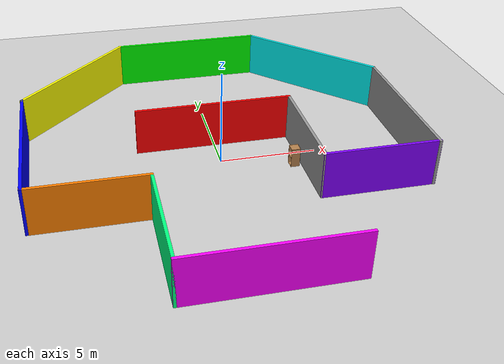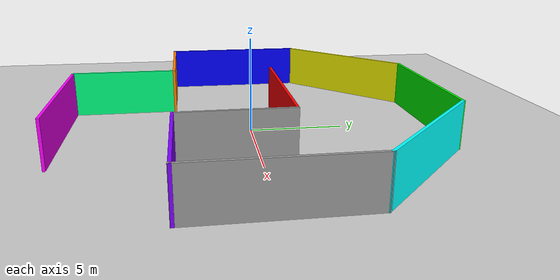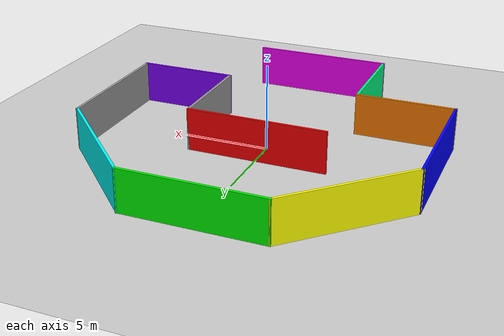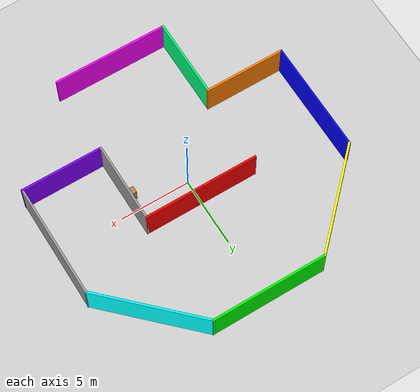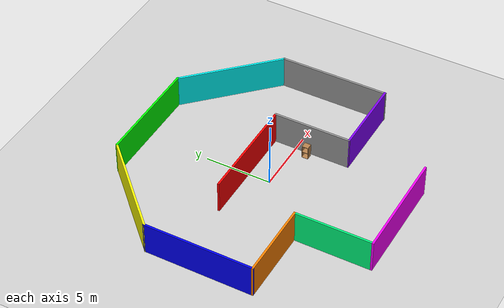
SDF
<sdf version="1.6">
 <world name="default">
  <model name="ground_plane">
   <static>1</static>
   <link name="link">
    <collision name="collision">
     <geometry><plane><normal>0 0 1</normal><size>100 100</size></plane></geometry>
     <surface><friction><ode><mu>100</mu><mu2>50</mu2></ode></friction></surface>
    </collision>
    <visual name="visual">
     <cast_shadows>0</cast_shadows>
     <geometry><plane><normal>0 0 1</normal><size>100 100</size></plane></geometry>
     <material>
      <script><uri>file://media/materials/scripts/gazebo.material</uri><name>Gazebo/Grey</name></script>
     </material>
    </visual>
   </link>
  </model>
  <model name="localize_room">
   <pose>0.00802 0.011691 0 0 -0 0</pose>
   <link name="Wall_15">
    <collision name="Wall_15_Collision">
     <geometry><box><size>8.284 0.15 2.5</size></box></geometry>
     <pose>0 0 1.25 0 -0 0</pose>
    </collision>
    <visual name="Wall_15_Visual">
     <pose>0 0 1.25 0 -0 0</pose>
     <geometry><box><size>8.284 0.15 2.5</size></box></geometry>
     <material>
      <script><uri>file://media/materials/scripts/gazebo.material</uri><name>Gazebo/Grey</name></script>
      <ambient>0 0 0 1</ambient>
     </material>
     <meta><layer>0</layer></meta>
    </visual>
    <pose>9.775 -0.015533 0 0 -0 1.5708</pose>
   </link>
   <link name="Wall_21">
    <collision name="Wall_21_Collision">
     <geometry><box><size>8.25 0.15 2.5</size></box></geometry>
     <pose>0 0 1.25 0 -0 0</pose>
    </collision>
    <visual name="Wall_21_Visual">
     <pose>0 0 1.25 0 -0 0</pose>
     <geometry><box><size>8.25 0.15 2.5</size></box></geometry>
     <material>
      <script><uri>file://media/materials/scripts/gazebo.material</uri><name>Gazebo/Grey</name></script>
      <ambient>0 0 1 1</ambient>
     </material>
     <meta><layer>0</layer></meta>
    </visual>
    <pose>-9.775 0.001467 0 0 -0 1.5708</pose>
   </link>
   <link name="Wall_27">
    <collision name="Wall_27_Collision">
     <geometry><box><size>8.284 0.15 2.5</size></box></geometry>
     <pose>0 0 1.25 0 -0 0</pose>
    </collision>
    <visual name="Wall_27_Visual">
     <pose>0 0 1.25 0 -0 0</pose>
     <geometry><box><size>8.284 0.15 2.5</size></box></geometry>
     <material>
      <script><uri>file://media/materials/scripts/gazebo.material</uri><name>Gazebo/Grey</name></script>
      <ambient>0 1 0 1</ambient>
     </material>
     <meta><layer>0</layer></meta>
    </visual>
    <pose>0 9.75947 0 0 -0 0</pose>
   </link>
   <link name="Wall_33">
    <collision name="Wall_33_Collision">
     <geometry><box><size>8.22233 0.15 2.5</size></box></geometry>
     <pose>0 0 1.25 0 -0 0</pose>
    </collision>
    <visual name="Wall_33_Visual">
     <pose>0 0 1.25 0 -0 0</pose>
     <geometry><box><size>8.22233 0.15 2.5</size></box></geometry>
     <material>
      <script><uri>file://media/materials/scripts/gazebo.material</uri><name>Gazebo/Grey</name></script>
      <ambient>1 1 0 1</ambient>
     </material>
     <meta><layer>0</layer></meta>
    </visual>
    <pose>-6.921 6.90547 0 0 0 -2.35619</pose>
   </link>
   <link name="Wall_35">
    <collision name="Wall_35_Collision">
     <geometry><box><size>8.22233 0.15 2.5</size></box></geometry>
     <pose>0 0 1.25 0 -0 0</pose>
    </collision>
    <visual name="Wall_35_Visual">
     <pose>0 0 1.25 0 -0 0</pose>
     <geometry><box><size>8.22233 0.15 2.5</size></box></geometry>
     <material>
      <script><uri>file://media/materials/scripts/gazebo.material</uri><name>Gazebo/Grey</name></script>
      <ambient>0 1 1 1</ambient>
     </material>
     <meta><layer>0</layer></meta>
    </visual>
    <pose>6.921 6.90547 0 0 0 -0.785398</pose>
   </link>
   <link name="Wall_4">
    <collision name="Wall_4_Collision">
     <geometry><box><size>8.284 0.15 2.5</size></box></geometry>
     <pose>0 0 1.25 0 -0 0</pose>
    </collision>
    <visual name="Wall_4_Visual">
     <pose>0 0 1.25 0 -0 0</pose>
     <geometry><box><size>8.284 0.15 2.5</size></box></geometry>
     <material>
      <script><uri>file://media/materials/scripts/gazebo.material</uri><name>Gazebo/Grey</name></script>
      <ambient>1 0 1 1</ambient>
     </material>
     <meta><layer>0</layer></meta>
    </visual>
    <pose>0 -9.79053 0 0 -0 0</pose>
   </link>
   <link name="Wall_56">
    <collision name="Wall_56_Collision">
     <geometry><box><size>5.858 0.15 2.5</size></box></geometry>
     <pose>0 0 1.25 0 -0 0</pose>
    </collision>
    <visual name="Wall_56_Visual">
     <pose>0 0 1.25 0 -0 0</pose>
     <geometry><box><size>5.858 0.15 2.5</size></box></geometry>
     <material>
      <script><uri>file://media/materials/scripts/gazebo.material</uri><name>Gazebo/Grey</name></script>
      <ambient>1 0.50196 0 1</ambient>
     </material>
     <meta><layer>0</layer></meta>
    </visual>
    <pose>-6.921 -4.04853 0 0 -0 0</pose>
   </link>
   <link name="Wall_58">
    <collision name="Wall_58_Collision">
     <geometry><box><size>5.75 0.15 2.5</size></box></geometry>
     <pose>0 0 1.25 0 -0 0</pose>
    </collision>
    <visual name="Wall_58_Visual">
     <pose>0 0 1.25 0 -0 0</pose>
     <geometry><box><size>5.75 0.15 2.5</size></box></geometry>
     <material>
      <script><uri>file://media/materials/scripts/gazebo.material</uri><name>Gazebo/Grey</name></script>
      <ambient>0 1 0.50196 1</ambient>
     </material>
     <meta><layer>0</layer></meta>
    </visual>
    <pose>-4.067 -6.99053 0 0 -0 1.5708</pose>
   </link>
   <link name="Wall_60">
    <collision name="Wall_60_Collision">
     <geometry><box><size>5.90863 0.15 2.5</size></box></geometry>
     <pose>0 0 1.25 0 -0 0</pose>
    </collision>
    <visual name="Wall_60_Visual">
     <pose>0 0 1.25 0 -0 0</pose>
     <geometry><box><size>5.90863 0.15 2.5</size></box></geometry>
     <material>
      <script><uri>file://media/materials/scripts/gazebo.material</uri><name>Gazebo/Grey</name></script>
      <ambient>0.50196 0 1 1</ambient>
     </material>
     <meta><layer>0</layer></meta>
    </visual>
    <pose>6.91525 -4.06048 0 0 0 -0.000864</pose>
   </link>
   <link name="Wall_63">
    <collision name="Wall_63_Collision">
     <geometry><box><size>8.25 0.15 2.5</size></box></geometry>
     <pose>0 0 1.25 0 -0 0</pose>
    </collision>
    <visual name="Wall_63_Visual">
     <pose>0 0 1.25 0 -0 0</pose>
     <geometry><box><size>8.25 0.15 2.5</size></box></geometry>
     <material>
      <script><uri>file://media/materials/scripts/gazebo.material</uri><name>Gazebo/Grey</name></script>
      <ambient>1 0 0 1</ambient>
     </material>
     <meta><layer>0</layer></meta>
    </visual>
    <pose>-0.014065 1.69201 0 0 -0 0</pose>
   </link>
   <link name="Wall_64">
    <collision name="Wall_64_Collision">
     <geometry><box><size>5.9 0.15 2.5</size></box></geometry>
     <pose>0 0 1.25 0 -0 0</pose>
    </collision>
    <visual name="Wall_64_Visual">
     <pose>0 0 1.25 0 -0 0</pose>
     <geometry><box><size>5.9 0.15 2.5</size></box></geometry>
     <material>
      <script><uri>file://media/materials/scripts/gazebo.material</uri><name>Gazebo/Grey</name></script>
      <ambient>1 1 1 1</ambient>
     </material>
     <meta><layer>0</layer></meta>
    </visual>
    <pose>4.03594 -1.18299 0 0 0 -1.5708</pose>
   </link>
   <static>1</static>
  </model>
  <model name="cabinet_1">
   <static>1</static>
   <link name="cabinet_bottom_plate">
    <inertial>
     <pose>0 0 -1 0 -0 0</pose>
     <inertia><ixx>2.05</ixx><ixy>0</ixy><ixz>0</ixz><iyy>2.05</iyy><iyz>0</iyz><izz>2.05</izz></inertia>
     <mass>25</mass>
    </inertial>
    <collision name="cabinet_bottom_plate_geom">
     <pose>0 0 0.01 0 -0 0</pose>
     <geometry><box><size>0.45 0.45 0.02</size></box></geometry>
    </collision>
    <visual name="cabinet_bottom_plate_geom_visual">
     <pose>0 0 0.01 0 -0 0</pose>
     <geometry><box><size>0.45 0.45 0.02</size></box></geometry>
     <material>
      <script><uri>file://media/materials/scripts/gazebo.material</uri><name>Gazebo/Wood</name></script>
     </material>
    </visual>
    <collision name="cabinet_bottom_plate_geom_cabinet_back_plate">
     <pose>0.235 0 0.51 0 -0 0</pose>
     <geometry><box><size>0.02 0.45 1.02</size></box></geometry>
    </collision>
    <visual name="cabinet_bottom_plate_geom_cabinet_back_plate_visual">
     <pose>0.235 0 0.51 0 -0 0</pose>
     <geometry><box><size>0.02 0.45 1.02</size></box></geometry>
     <material>
      <script><uri>file://media/materials/scripts/gazebo.material</uri><name>Gazebo/Wood</name></script>
     </material>
    </visual>
    <collision name="cabinet_bottom_plate_geom_cabinet_left_plate">
     <pose>0 0.235 0.51 0 -0 0</pose>
     <geometry><box><size>0.45 0.02 1.02</size></box></geometry>
    </collision>
    <visual name="cabinet_bottom_plate_geom_cabinet_left_plate_visual">
     <pose>0 0.235 0.51 0 -0 0</pose>
     <geometry><box><size>0.45 0.02 1.02</size></box></geometry>
     <material>
      <script><uri>file://media/materials/scripts/gazebo.material</uri><name>Gazebo/Wood</name></script>
     </material>
    </visual>
    <collision name="cabinet_bottom_plate_geom_cabinet_middle_plate">
     <pose>0 0 0.51 0 -0 0</pose>
     <geometry><box><size>0.45 0.45 0.02</size></box></geometry>
    </collision>
    <visual name="cabinet_bottom_plate_geom_cabinet_middle_plate_visual">
     <pose>0 0 0.51 0 -0 0</pose>
     <geometry><box><size>0.45 0.45 0.02</size></box></geometry>
     <material>
      <script><uri>file://media/materials/scripts/gazebo.material</uri><name>Gazebo/Wood</name></script>
     </material>
    </visual>
    <collision name="cabinet_bottom_plate_geom_cabinet_right_plate">
     <pose>0 -0.235 0.51 0 -0 0</pose>
     <geometry><box><size>0.45 0.02 1.02</size></box></geometry>
    </collision>
    <visual name="cabinet_bottom_plate_geom_cabinet_right_plate_visual">
     <pose>0 -0.235 0.51 0 -0 0</pose>
     <geometry><box><size>0.45 0.02 1.02</size></box></geometry>
     <material>
      <script><uri>file://media/materials/scripts/gazebo.material</uri><name>Gazebo/Wood</name></script>
     </material>
    </visual>
    <collision name="cabinet_bottom_plate_geom_cabinet_top_plate">
     <pose>0 0 1.01 0 -0 0</pose>
     <geometry><box><size>0.45 0.45 0.02</size></box></geometry>
    </collision>
    <visual name="cabinet_bottom_plate_geom_cabinet_top_plate_visual">
     <pose>0 0 1.01 0 -0 0</pose>
     <geometry><box><size>0.45 0.45 0.02</size></box></geometry>
     <material>
      <script><uri>file://media/materials/scripts/gazebo.material</uri><name>Gazebo/Wood</name></script>
     </material>
    </visual>
   </link>
   <pose>3.6 -1 0 0 -0 0</pose>
  </model>
 </world>
</sdf>
